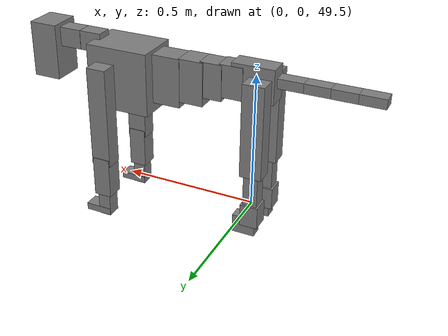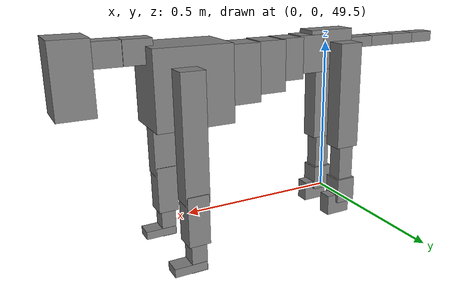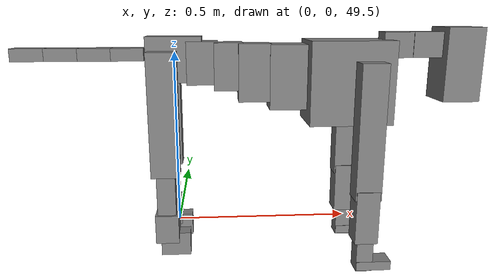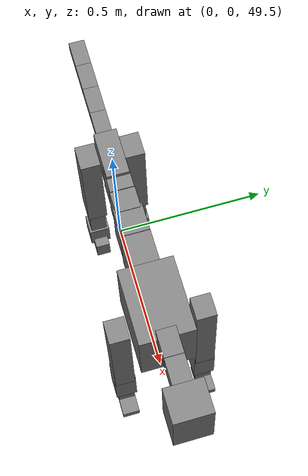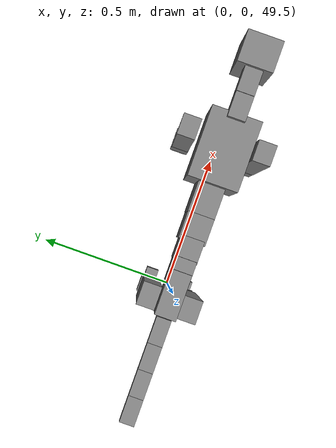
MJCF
<mujoco model="dog">

    <default>
        <joint armature="0.02" stiffness="1" damping="0.2" limited="true"/>
        <geom condim="3" friction="1 0.05 0.05" margin="0.01"/>
        <motor ctrllimited="true" ctrlrange="-1.0 1.0" forcelimited="true" gear="50"/>
    </default>

    <compiler inertiafromgeom="true" angle="radian"/>

    <option timestep="0.016" iterations="50" tolerance="1e-10" solver="Newton" jacobian="dense" cone="pyramidal"/>

    <size nconmax="20000" njmax="60000" nstack="5000000"/>
    <visual>
        <map force="0.1" zfar="30"/>
        <rgba haze="0.15 0.25 0.35 1"/>
        <quality shadowsize="2048"/>
        <global offwidth="800" offheight="800"/>
    </visual>

    <asset>
        <texture type="skybox" builtin="gradient" rgb1="0.3 0.5 0.7" rgb2="0 0 0" width="512" height="512"/>
        <texture name="texplane" type="2d" builtin="checker" rgb1=".2 .3 .4" rgb2=".1 0.15 0.2" width="512" height="512"
                 mark="cross" markrgb=".8 .8 .8"/>
        <texture name="texgeom" type="cube" builtin="flat" mark="cross" width="127" height="1278" rgb1="0.8 0.6 0.4"
                 rgb2="0.8 0.6 0.4" markrgb="1 1 1" random="0.01"/>

        <material name="matplane" reflectance="0.3" texture="texplane" texrepeat="1 1" texuniform="true"/>
        <material name="matgeom" texture="texgeom" texuniform="true" rgba="0.8 0.6 .4 1"/>
    </asset>

    <worldbody>
        <geom name="floor" pos="0 0 0" size="0 0 .25" type="plane" material="matplane" condim="3"/>

        <light directional="false" diffuse=".2 .2 .2" specular="0 0 0" pos="0 0 5" dir="0 0 -1" castshadow="false"/>
        <light mode="targetbodycom" target="torso" directional="false" diffuse=".8 .8 .8" specular="0.3 0.3 0.3"
               pos="0 0 4.0" dir="0 0 -1"/>

        <body name="root" pos="0 0 50">
            <freejoint name="root_1"/>
            <geom type="box" pos="0 0 -0.02" size="0.0774  0.0358  0.063" density="2030"/>

            <body name="spine1" pos="0.054 0 0">
                <joint name="spine1_y" axis="0 1 0" range="0 0.7" limited="true"/>
                <geom type="box" pos="0.02375 0 -0.03" size="0.04375  0.0375  0.05985" density="2030"/>

                <body name="spine2" pos="0.0612 0 0">
                    <joint name="spine2_y" axis="0 1 0" range="-0.15 0.15" limited="true"/>
                    <geom type="box" pos="0.03555  0  -0.04" size="0.04055  0.039  0.06615" density="2030"/>

                    <body name="spine3" pos="0.0730 0 0">
                        <joint name="spine3_y" axis="0 1 0" range="-0.15 0.15" limited="true"/>
                        <geom type="box" pos="0.03555  0  -0.057" size="0.04555  0.0445  0.081" density="2030"/>

                        <body name="spine4" pos="0.0780 0 0">
                            <joint name="spine4_y" axis="0 1 0" range="-0.15 0.15" limited="true"/>
                            <geom type="box" pos="0.05265  0  -0.07" size="0.05265  0.045  0.09135" density="2030"/>

                            <body name="torso" pos="0.1082 0 0">
                                <joint name="torso_y" axis="0 1 0" range="-0.15 0.15" limited="true"/>
                                <geom type="box" pos="0.11925  0  -0.085" size="0.11925  0.085  0.11745"
                                      density="2030"/>

                                <body name="neck1" pos="0.2160  0   0.0180">
                                    <joint name="neck1_y" axis="0 1 0" range="-1.2  -1" limited="true"/>
                                    <geom type="box" pos="0.0423  0  0" size="0.0423  0.03  0.036" density="2325"/>

                                    <body name="neck2" pos="0.0853  0  0">
                                        <joint name="neck2_y" axis="0 1 0" range="0.1  0" limited="true"/>
                                        <geom type="box" pos="0.0423  0  0" size="0.0423  0.03  0.036" density="2325"/>

                                        <body name="head" pos="0.0853  0  0">
                                            <joint name="head_y" axis="0 1 0" range="-0.3  -0.2" limited="true"/>
                                            <geom type="box" pos="0.0531  0  -0.055" size="0.0531  0.06  0.1044"
                                                  density="4030"/>

                                        </body>
                                    </body>
                                </body>

                                <body name="front_shoulder" pos="0.156  0   -0.0480">
                                    <joint name="front_shoulder_y" axis="0 1 0" range="-1 1.5" limited="true"/>
                                    <geom type="box" pos="0 0.13 -0.1625" size="0.0363  0.0310  0.1892" density="1158"/>
                                    <geom type="box" pos="0 -0.13 -0.1625" size="0.0363  0.0310  0.1892"
                                          density="1158"/>

                                    <body name="front_elbow" pos="0  0  -0.3250">
                                        <joint name="front_elbow_y" axis="0 1 0" range="-2 0" limited="true"/>
                                        <geom type="box" pos="0 0.13 -0.0766" size="0.0328  0.0335  0.0766"
                                              density="1081"/>
                                        <geom type="box" pos="0 -0.13 -0.0766" size="0.0328  0.0335  0.0766"
                                              density="1081"/>

                                        <body name="front_wrist" pos="0  0  -0.1531">
                                            <joint name="front_wrist_y" axis="0 1 0" range="-0.2 0" limited="true"/>
                                            <geom type="box" pos="0 0.13 -0.0372" size="0.0238  0.0265  0.0503"
                                                  density="1664"/>
                                            <geom type="box" pos="0 -0.13 -0.0372" size="0.0238  0.0265  0.0503"
                                                  density="1664"/>

                                            <body name="front_finger_end" pos="0  0  -0.0744">
                                                <joint name="front_finger_y" axis="0 1 0" range="-0.4 1"
                                                       limited="true"/>
                                                <geom type="box" pos="0.0272  0.13  0.0018"
                                                      size="0.0499  0.0272  0.0132" density="1515"/>
                                                <geom type="box" pos="0.0272  -0.13  0.0018"
                                                      size="0.0499  0.0272  0.0132" density="1515"/>

                                            </body>

                                        </body>
                                    </body>
                                </body>

                            </body>
                        </body>
                    </body>
                </body>
            </body>

            <body name="back_hip" pos="-0.03 0 -0.018">
                <joint name="back_hip_y" axis="0 1 0" range="-1.5 0.3" limited="true"/>
                <geom type="box" pos="0 0.07 -0.1496" size="0.0396  0.0311  0.1724" density="1154"/>
                <geom type="box" pos="0 -0.07 -0.1496" size="0.0396  0.0311  0.1724" density="1154"/>

                <body name="back_knee" pos="0  0  -0.2991">
                    <joint name="back_knee_y" axis="0 1 0" range="0 2.8" limited="true"/>
                    <geom type="box" pos="0 0.07 -0.0730" size="0.0262  0.0259  0.0886" density="1227"/>
                    <geom type="box" pos="0 -0.07 -0.0730" size="0.0262  0.0259  0.0886" density="1227"/>

                    <body name="back_ankle" pos="0  0  -0.1461">
                        <joint name="back_ankle_y" axis="0 1 0" range="-2.2 0" limited="true"/>
                        <geom type="box" pos="0 0.07 -0.0301" size="0.0329  0.0329  0.0413" density="1284"/>
                        <geom type="box" pos="0 -0.07 -0.0301" size="0.0329  0.0329  0.0413" density="1284"/>

                        <body name="back_toe_end" pos="0  0  -0.0601">
                            <joint name="back_toe_y" axis="0 1 0" range="-0.4 1" limited="true"/>
                            <geom type="box" pos="0.0227  0.07  -0.0186" size="0.0417  0.0227  0.0336" density="1515"/>
                            <geom type="box" pos="0.0227  -0.07  -0.0186" size="0.0417  0.0227  0.0336" density="1515"/>

                        </body>
                    </body>
                </body>
            </body>

            <body name="tail1" pos="-0.074 0 -0.006">
                <joint name="tail1_y" axis="0 1 0" range="-0.2 0.2" limited="true"/>
                <geom type="box" pos="-0.0536  0  0" size="0.045  0.025  0.0175" density="1587"/>

                <body name="tail2" pos="-0.09 0 0">
                    <joint name="tail2_y" axis="0 1 0" range="-0.2 0.2" limited="true"/>
                    <geom type="box" pos="-0.0536  0  0" size="0.045  0.025  0.0175" density="1587"/>

                    <body name="tail3" pos="-0.09 0 0">
                        <joint name="tail3_y" axis="0 1 0" range="-0.2 0.2" limited="true"/>
                        <geom type="box" pos="-0.0536  0  0" size="0.045  0.025  0.0175" density="1587"/>

                        <body name="tail4" pos="-0.09 0 0">
                            <joint name="tail4_y" axis="0 1 0" range="-0.2 0.2" limited="true"/>
                            <geom type="box" pos="-0.0536  0  0" size="0.045  0.025  0.0175" density="1587"/>

                        </body>
                    </body>
                </body>
            </body>
        </body>
    </worldbody>

    <actuator>
        <motor joint="spine1_y" forcerange="-150 150     "/>
        <motor joint="spine2_y" forcerange="-150 150     "/>
        <motor joint="spine3_y" forcerange="-150 150     "/>
        <motor joint="spine4_y" forcerange="-150 150     "/>
        <motor joint="torso_y" forcerange="-150 150     "/>
        <motor joint="neck1_y" forcerange="-100 100       "/>
        <motor joint="neck2_y" forcerange="-100 100       "/>
        <motor joint="head_y" forcerange="-150 150       "/>
        <motor joint="front_shoulder_y" forcerange="-155.33 151.31"/>
        <motor joint="front_elbow_y" forcerange="-182.11 161.46"/>
        <motor joint="front_wrist_y" forcerange="-107.48 104.14"/>
        <motor joint="front_finger_y" forcerange="-32.88 72.30"/>
        <motor joint="back_hip_y" forcerange="-391.36 223.26"/>
        <motor joint="back_knee_y" forcerange="-243.48 332.78"/>
        <motor joint="back_angle_y" forcerange="-220.67 205.29"/>
        <motor joint="back_toe_y" forcerange="-40.30 61.61"/>
        <motor joint="tail1_y" forcerange="-50 50     "/>
        <motor joint="tail2_y" forcerange="-50 50     "/>
        <motor joint="tail3_y" forcerange="-50 50     "/>
        <motor joint="tail4_y" forcerange="-50 50     "/>
    </actuator>
</mujoco>
